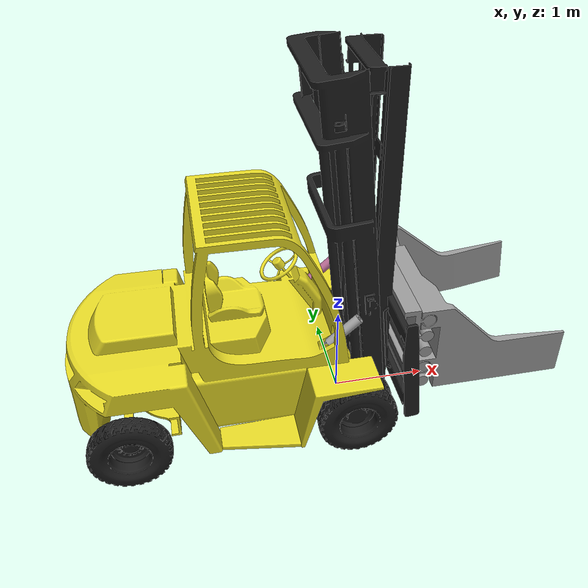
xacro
<?xml version="1.0" ?>
<robot name="Hyster" xmlns:xacro="http://www.ros.org/wiki/xacro">

<xacro:include filename="$(find Hyster_description)/urdf/materials.xacro" />
<xacro:include filename="$(find Hyster_description)/urdf/Hyster.gazebo" />
<link name="base_footprint"/>

<joint name="base_footprint_joint" type="fixed">
  <origin xyz="1.17 0 -2.865" rpy="0 0 1.5708"/>
  <parent link="base_footprint"/>
  <child link="base_link"/>
</joint>

<link name="base_link">
  <inertial>
    <origin xyz="-0.0004925789832203201 2.4769998313137425 3.690590684581383" rpy="0 0 0"/>
    <mass value="23179.86410500836"/>
    <inertia ixx="15802.894967" iyy="6615.204083" izz="15731.294384" ixy="-5.906617" iyz="-417.72686" ixz="-7.661882"/>
  </inertial>
  <visual>
    <origin xyz="0 0 0" rpy="0 0 0"/>
    <geometry>
      <mesh filename="file://$(find Hyster_description)/meshes/base_link.stl" scale="0.001 0.001 0.001"/>
    </geometry>
    <material name="hyster_yellow"/>
  </visual>
  <collision>
    <origin xyz="0 0 0" rpy="0 0 0"/>
    <geometry>
      <mesh filename="file://$(find Hyster_description)/meshes/base_link.stl" scale="0.001 0.001 0.001"/>
    </geometry>
  </collision>
</link>

<link name="Base_das_garras_1">
  <inertial>
    <origin xyz="-1.0174100000000017 -0.0981366269746784 -0.08426486939488775" rpy="0 0 0"/>
    <mass value="1588.2579982955185"/>
    <inertia ixx="151.93722" iyy="421.827021" izz="286.662272" ixy="-0.0" iyz="-5.908384" ixz="0.0"/>
  </inertial>
  <visual>
    <origin xyz="-1.01632 -0.616947 -3.972451" rpy="0 0 0"/>
    <geometry>
      <mesh filename="file://$(find Hyster_description)/meshes/Base_das_garras_1.stl" scale="0.001 0.001 0.001"/>
    </geometry>
    <material name="steel_grey"/>
  </visual>
  <collision>
    <origin xyz="-1.01632 -0.616947 -3.972451" rpy="0 0 0"/>
    <geometry>
      <mesh filename="file://$(find Hyster_description)/meshes/Base_das_garras_1.stl" scale="0.001 0.001 0.001"/>
    </geometry>
  </collision>
</link>

<link name="mast_inner">
  <inertial>
    <origin xyz="1.4162614780635594 -4.987760374523981 0.7954257791514321" rpy="0 0 0"/>
    <mass value="274.26551036234616"/>
    <inertia ixx="371.186685" iyy="406.150315" izz="40.184754" ixy="-0.002197" iyz="-7.886965" ixz="0.003937"/>
  </inertial>
  <visual>
    <origin xyz="1.416773 -5.907135 -4.36998" rpy="0 0 0"/>
    <geometry>
      <mesh filename="file://$(find Hyster_description)/meshes/3._Frame_-_2_1.stl" scale="0.001 0.001 0.001"/>
    </geometry>
    <material name="mast_black"/>
  </visual>
  <collision>
    <origin xyz="1.416773 -5.907135 -4.36998" rpy="0 0 0"/>
    <geometry>
      <mesh filename="file://$(find Hyster_description)/meshes/3._Frame_-_2_1.stl" scale="0.001 0.001 0.001"/>
    </geometry>
  </collision>
</link>

<link name="Frame_1_1">
  <inertial>
    <origin xyz="0.45235358619699945 -0.07575010556847905 2.1370345537146167" rpy="0 0 0"/>
    <mass value="786.0759725054191"/>
    <inertia ixx="838.620131" iyy="958.544532" izz="141.548426" ixy="0.206413" iyz="-37.464087" ixz="-0.034091"/>
  </inertial>
  <visual>
    <origin xyz="0.45175 -1.105433 -3.11971" rpy="0 0 0"/>
    <geometry>
      <mesh filename="file://$(find Hyster_description)/meshes/Frame_1_1.stl" scale="0.001 0.001 0.001"/>
    </geometry>
    <material name="mast_black"/>
  </visual>
  <collision>
    <origin xyz="0.45175 -1.105433 -3.11971" rpy="0 0 0"/>
    <geometry>
      <mesh filename="file://$(find Hyster_description)/meshes/Frame_1_1.stl" scale="0.001 0.001 0.001"/>
    </geometry>
  </collision>
</link>

<link name="Base_deslizante_1">
  <inertial>
    <origin xyz="0.0005899998492182473 -0.7809302774388625 -5.52840075585603" rpy="0 0 0"/>
    <mass value="611.9992875961477"/>
    <inertia ixx="100.566337" iyy="306.612743" izz="212.604119" ixy="-0.0" iyz="0.482863" ixz="-0.0"/>
  </inertial>
  <visual>
    <origin xyz="0.00118 -1.454932 -9.320984" rpy="0 0 0"/>
    <geometry>
      <mesh filename="file://$(find Hyster_description)/meshes/Base_deslizante_1.stl" scale="0.001 0.001 0.001"/>
    </geometry>
    <material name="mast_black"/>
  </visual>
  <collision>
    <origin xyz="0.00118 -1.454932 -9.320984" rpy="0 0 0"/>
    <geometry>
      <mesh filename="file://$(find Hyster_description)/meshes/Base_deslizante_1.stl" scale="0.001 0.001 0.001"/>
    </geometry>
  </collision>
</link>

<link name="Left_front_wheel_1">
  <inertial>
    <origin xyz="-0.3141501086785135 -3.5293322264706717e-07 1.2163996063740967e-06" rpy="0 0 0"/>
    <mass value="1255.0748898156764"/>
    <inertia ixx="106.011711" iyy="70.775652" izz="70.775518" ixy="0.000114" iyz="7.7e-05" ixz="0.0001"/>
  </inertial>
  <visual>
    <origin xyz="0.4705 -1.170433 -3.26971" rpy="0 0 0"/>
    <geometry>
      <mesh filename="file://$(find Hyster_description)/meshes/Left_front_wheel_1.stl" scale="0.001 0.001 0.001"/>
    </geometry>
    <material name="tire_black"/>
  </visual>
  <collision>
    <origin xyz="-0.266 0 0" rpy="0 1.5708 0"/>
    <geometry>
      <cylinder radius="0.405" length="0.53"/>
    </geometry>
  </collision>
</link>

<link name="Right_front_wheel_1">
  <inertial>
    <origin xyz="0.31415737290690954 8.302154363981629e-08 1.8685303393439767e-07" rpy="0 0 0"/>
    <mass value="1255.2450284201448"/>
    <inertia ixx="106.013616" iyy="70.776839" izz="70.776864" ixy="-4.4e-05" iyz="-3.9e-05" ixz="9e-06"/>
  </inertial>
  <visual>
    <origin xyz="-0.4705 -1.170433 -3.26971" rpy="0 0 0"/>
    <geometry>
      <mesh filename="file://$(find Hyster_description)/meshes/Right_front_wheel_1.stl" scale="0.001 0.001 0.001"/>
    </geometry>
    <material name="tire_black"/>
  </visual>
  <collision>
    <origin xyz="0.266 0 0" rpy="0 1.5708 0"/>
    <geometry>
      <cylinder radius="0.405" length="0.53"/>
    </geometry>
  </collision>
</link>

<link name="Left_rear_wheel_1">
  <inertial>
    <origin xyz="-0.11874149685492574 -7.711468930082788e-08 -1.374510847362842e-07" rpy="0 0 0"/>
    <mass value="572.9237330542089"/>
    <inertia ixx="52.533082" iyy="27.997105" izz="27.99706" ixy="-3e-06" iyz="-9e-06" ixz="-4e-06"/>
  </inertial>
  <visual>
    <origin xyz="0.777 -3.405433 -3.26421" rpy="0 0 0"/>
    <geometry>
      <mesh filename="file://$(find Hyster_description)/meshes/Left_rear_wheel_1.stl" scale="0.001 0.001 0.001"/>
    </geometry>
    <material name="tire_black"/>
  </visual>
  <collision>
    <origin xyz="-0.1125 0 0" rpy="0 1.5708 0"/>
    <geometry>
      <cylinder radius="0.405" length="0.225"/>
    </geometry>
  </collision>
</link>

<link name="Right_rear_wheel_1">
  <inertial>
    <origin xyz="0.11874147941052993 1.0383174187111877e-07 1.681661996322248e-07" rpy="0 0 0"/>
    <mass value="572.9262498031871"/>
    <inertia ixx="52.533409" iyy="27.997252" izz="27.997262" ixy="-6e-06" iyz="-7e-06" ixz="2e-06"/>
  </inertial>
  <visual>
    <origin xyz="-0.777 -3.405433 -3.26421" rpy="0 0 0"/>
    <geometry>
      <mesh filename="file://$(find Hyster_description)/meshes/Right_rear_wheel_1.stl" scale="0.001 0.001 0.001"/>
    </geometry>
    <material name="tire_black"/>
  </visual>
  <collision>
    <origin xyz="0.1125 0 0" rpy="0 1.5708 0"/>
    <geometry>
      <cylinder radius="0.405" length="0.225"/>
    </geometry>
  </collision>
</link>

<link name="right_hub">
  <inertial>
    <origin xyz="0.10676222612247532 -0.001134425302500297 -0.11416074168174717" rpy="0 0 0"/>
    <mass value="74.42878224447517"/>
    <inertia ixx="0.917356" iyy="0.631169" izz="0.619987" ixy="-0.007037" iyz="-7.1e-05" ixz="0.006668"/>
  </inertial>
  <visual>
    <origin xyz="-0.607 -3.405433 -3.37921" rpy="0 0 0"/>
    <geometry>
      <mesh filename="file://$(find Hyster_description)/meshes/10.Right__Hub_1.stl" scale="0.001 0.001 0.001"/>
    </geometry>
    <material name="dark_grey"/>
  </visual>
  <collision>
    <origin xyz="-0.607 -3.405433 -3.37921" rpy="0 0 0"/>
    <geometry>
      <mesh filename="file://$(find Hyster_description)/meshes/10.Right__Hub_1.stl" scale="0.001 0.001 0.001"/>
    </geometry>
  </collision>
</link>

<link name="left_hub">
  <inertial>
    <origin xyz="-0.10676222612247543 -0.001134425302500297 -0.11416074168174717" rpy="0 0 0"/>
    <mass value="74.42878224447499"/>
    <inertia ixx="0.917356" iyy="0.631169" izz="0.619987" ixy="0.007037" iyz="-7.1e-05" ixz="-0.006668"/>
  </inertial>
  <visual>
    <origin xyz="0.607 -3.405433 -3.37921" rpy="0 0 0"/>
    <geometry>
      <mesh filename="file://$(find Hyster_description)/meshes/10._Left_Hub2_1.stl" scale="0.001 0.001 0.001"/>
    </geometry>
    <material name="dark_grey"/>
  </visual>
  <collision>
    <origin xyz="0.607 -3.405433 -3.37921" rpy="0 0 0"/>
    <geometry>
      <mesh filename="file://$(find Hyster_description)/meshes/10._Left_Hub2_1.stl" scale="0.001 0.001 0.001"/>
    </geometry>
  </collision>
</link>

<link name="Garra_1_1">
  <inertial>
    <origin xyz="0.25314091830770374 -0.34996483420745594 -0.41637599264107417" rpy="0 0 0"/>
    <mass value="980.1329836469724"/>
    <inertia ixx="237.854536" iyy="187.973293" izz="244.401542" ixy="-64.814959" iyz="-53.91832" ixz="-31.272353"/>
  </inertial>
  <visual>
    <origin xyz="0.72609 -0.45169 -4.25807" rpy="0 0 0"/>
    <geometry>
      <mesh filename="file://$(find Hyster_description)/meshes/Garra_1_1.stl" scale="0.001 0.001 0.001"/>
    </geometry>
    <material name="steel_grey"/>
  </visual>
  <!-- Flat pad instead of the STL: the mesh's inner face flares towards the tip
       and wedges the load out when the clamp closes -->
  <collision>
    <origin xyz="0.04009 -0.77719 -0.65157" rpy="0 0 0"/>
    <geometry>
      <box size="0.08 1.425 0.507"/>
    </geometry>
  </collision>
</link>

<link name="Garra_2_1">
  <inertial>
    <origin xyz="-0.2531499051288749 -0.3499413415582662 0.2701843477564001" rpy="0 0 0"/>
    <mass value="980.059358014733"/>
    <inertia ixx="221.549361" iyy="171.683869" izz="244.376384" ixy="64.809121" iyz="-19.970136" ixz="0.01832"/>
  </inertial>
  <visual>
    <origin xyz="-0.72391 -0.45169 -3.45807" rpy="0 0 0"/>
    <geometry>
      <mesh filename="file://$(find Hyster_description)/meshes/Garra_2_1.stl" scale="0.001 0.001 0.001"/>
    </geometry>
    <material name="steel_grey"/>
  </visual>
  <!-- Flat pad instead of the STL: the mesh's inner face flares towards the tip
       and wedges the load out when the clamp closes -->
  <collision>
    <origin xyz="-0.03991 -0.77719 0.14843" rpy="0 0 0"/>
    <geometry>
      <box size="0.08 1.425 0.507"/>
    </geometry>
  </collision>
</link>

<link name="right_tilt_cylinder">
  <inertial>
    <origin xyz="2.220446049250313e-16 -0.19411720247653874 0.13227000062779704" rpy="0 0 0"/>
    <mass value="21.72488855838382"/>
    <inertia ixx="0.337856" iyy="0.127821" izz="0.24018" ixy="0.0" iyz="0.142914" ixz="-0.0"/>
  </inertial>
  <visual>
    <origin xyz="-0.527625 -1.425994 -3.935058" rpy="0 0 0"/>
    <geometry>
      <mesh filename="file://$(find Hyster_description)/meshes/13._Cylinder_-_1_1_2_1.stl" scale="0.001 0.001 0.001"/>
    </geometry>
    <material name="chrome"/>
  </visual>
  <collision>
    <origin xyz="-0.527625 -1.425994 -3.935058" rpy="0 0 0"/>
    <geometry>
      <mesh filename="file://$(find Hyster_description)/meshes/13._Cylinder_-_1_1_2_1.stl" scale="0.001 0.001 0.001"/>
    </geometry>
  </collision>
</link>

<link name="left_tilt_cylinder">
  <inertial>
    <origin xyz="-1.1102230246251565e-16 -0.19411720247652253 0.13227000062782102" rpy="0 0 0"/>
    <mass value="21.72488855838382"/>
    <inertia ixx="0.337856" iyy="0.127821" izz="0.24018" ixy="-0.0" iyz="0.142914" ixz="-0.0"/>
  </inertial>
  <visual>
    <origin xyz="0.527625 -1.425994 -3.935058" rpy="0 0 0"/>
    <geometry>
      <mesh filename="file://$(find Hyster_description)/meshes/15._Cylinder_-_1_1__1.stl" scale="0.001 0.001 0.001"/>
    </geometry>
    <material name="chrome"/>
  </visual>
  <collision>
    <origin xyz="0.527625 -1.425994 -3.935058" rpy="0 0 0"/>
    <geometry>
      <mesh filename="file://$(find Hyster_description)/meshes/15._Cylinder_-_1_1__1.stl" scale="0.001 0.001 0.001"/>
    </geometry>
  </collision>
</link>

<joint name="clamp_base_joint" type="prismatic">
  <origin xyz="1.0175 -0.837985 -5.348533" rpy="0 0 0"/>
  <parent link="Base_deslizante_1"/>
  <child link="Base_das_garras_1"/>
  <axis xyz="1.0 0.0 0.0"/>
  <limit lower="-0.3" upper="0.3" effort="100000" velocity="1.0"/>
</joint>

<joint name="mast_lift_joint" type="prismatic">
  <origin xyz="-0.965023 4.801702 1.25027" rpy="0 0 0"/>
  <parent link="Frame_1_1"/>
  <child link="mast_inner"/>
  <axis xyz="0.0 0.0 1.0"/>
  <limit lower="0.0" upper="2.65" effort="300000" velocity="1.0"/>
</joint>

<joint name="mast_tilt_joint" type="fixed">
  <origin xyz="-0.45175 1.105433 3.11971" rpy="0 0 0"/>
  <parent link="base_link"/>
  <child link="Frame_1_1"/>
</joint>

<joint name="carriage_joint" type="prismatic">
  <origin xyz="1.415593 -4.452203 4.951004" rpy="0 0 0"/>
  <parent link="mast_inner"/>
  <child link="Base_deslizante_1"/>
  <axis xyz="0.0 0.0 1.0"/>
  <limit lower="-0.25" upper="2.3" effort="300000" velocity="1.0"/>
</joint>

<joint name="clamp_1_joint" type="prismatic">
  <origin xyz="-1.74241 -0.165257 0.285619" rpy="0 0 0"/>
  <parent link="Base_das_garras_1"/>
  <child link="Garra_1_1"/>
  <axis xyz="1.0 0.0 0.0"/>
  <limit lower="0.0" upper="0.45" effort="100000" velocity="1.0"/>
</joint>

<joint name="clamp_2_joint" type="prismatic">
  <origin xyz="-0.29241 -0.165257 -0.514381" rpy="0 0 0"/>
  <parent link="Base_das_garras_1"/>
  <child link="Garra_2_1"/>
  <axis xyz="-1.0 0.0 0.0"/>
  <limit lower="0.0" upper="0.45" effort="100000" velocity="1.0"/>
</joint>

<joint name="right_tilt_cylinder_joint" type="fixed">
  <origin xyz="0.527625 1.425994 3.935058" rpy="0 0 0"/>
  <parent link="base_link"/>
  <child link="right_tilt_cylinder"/>
</joint>

<joint name="left_tilt_cylinder_joint" type="fixed">
  <origin xyz="-0.527625 1.425994 3.935058" rpy="0 0 0"/>
  <parent link="base_link"/>
  <child link="left_tilt_cylinder"/>
</joint>

<!-- Wheels: all axes along +X so positive velocity drives towards the clamps (-Y of base_link) -->
<joint name="left_front_wheel_joint" type="continuous">
  <origin xyz="-0.4705 1.170433 3.26971" rpy="0 0 0"/>
  <parent link="base_link"/>
  <child link="Left_front_wheel_1"/>
  <axis xyz="1.0 0.0 0.0"/>
</joint>

<joint name="right_front_wheel_joint" type="continuous">
  <origin xyz="0.4705 1.170433 3.26971" rpy="0 0 0"/>
  <parent link="base_link"/>
  <child link="Right_front_wheel_1"/>
  <axis xyz="1.0 0.0 0.0"/>
</joint>

<joint name="left_rear_wheel_joint" type="continuous">
  <origin xyz="-0.17 0.0 -0.115" rpy="0 0 0"/>
  <parent link="left_hub"/>
  <child link="Left_rear_wheel_1"/>
  <axis xyz="1.0 0.0 0.0"/>
</joint>

<joint name="right_rear_wheel_joint" type="continuous">
  <origin xyz="0.17 0.0 -0.115" rpy="0 0 0"/>
  <parent link="right_hub"/>
  <child link="Right_rear_wheel_1"/>
  <axis xyz="1.0 0.0 0.0"/>
</joint>

<!-- Rear steering: axis is -Z so the ackermann plugin's front-steer geometry holds for a rear-steered vehicle -->
<joint name="right_hub_steer_joint" type="revolute">
  <origin xyz="0.607 3.405433 3.37921" rpy="0 0 0"/>
  <parent link="base_link"/>
  <child link="right_hub"/>
  <axis xyz="0.0 0.0 -1.0"/>
  <limit upper="0.6" lower="-0.6" effort="100000" velocity="100"/>
  <dynamics damping="50"/>
</joint>

<joint name="left_hub_steer_joint" type="revolute">
  <origin xyz="-0.607 3.405433 3.37921" rpy="0 0 0"/>
  <parent link="base_link"/>
  <child link="left_hub"/>
  <axis xyz="0.0 0.0 -1.0"/>
  <limit upper="0.6" lower="-0.6" effort="100000" velocity="100"/>
  <dynamics damping="50"/>
</joint>

</robot>

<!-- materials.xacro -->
<robot name="Hyster" xmlns:xacro="http://www.ros.org/wiki/xacro" >

<material name="silver">
  <color rgba="0.700 0.700 0.700 1.000"/>
</material>

</robot>
